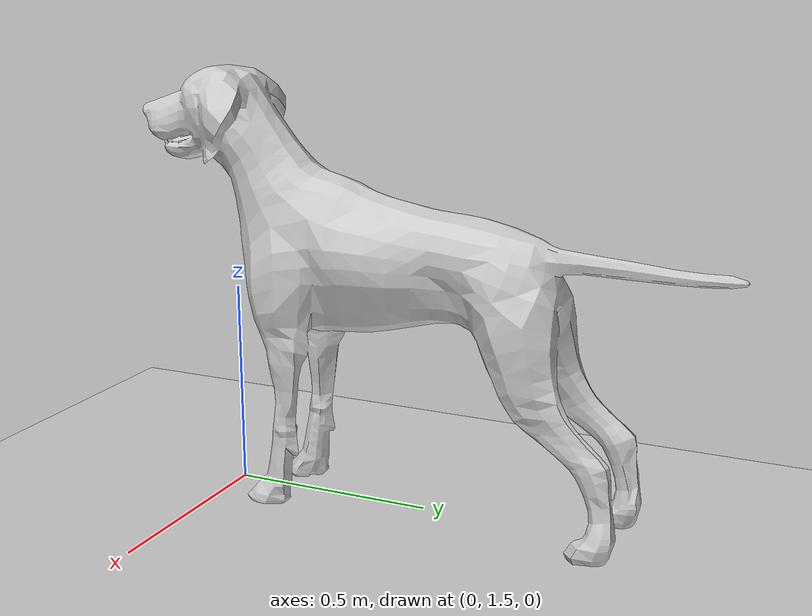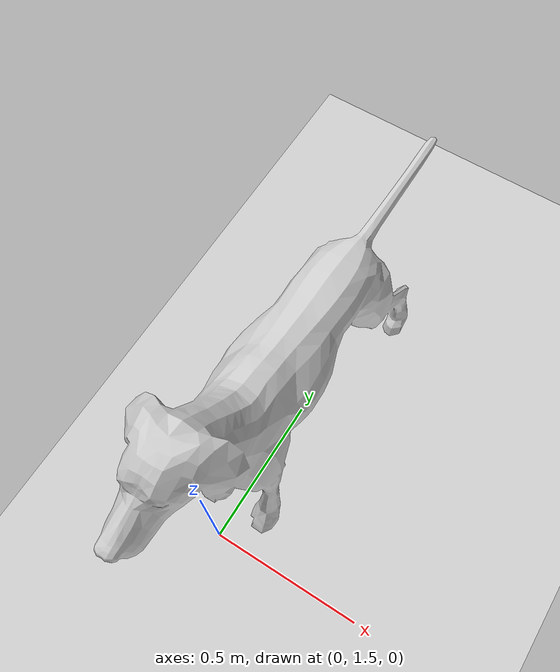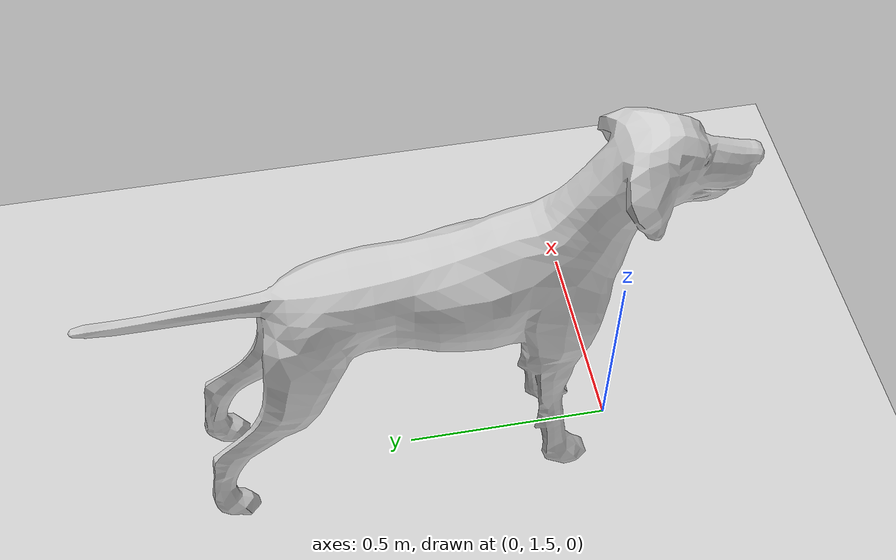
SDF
<?xml version="1.0"?>

<sdf version="1.4">
  <world name="default">

    <!-- Ground Plane -->
    <include>
      <uri>model://ground_plane</uri>
    </include>

    <!-- Source of Light -->
    <include>
      <uri>model://sun</uri>
    </include>

    <!-- Custom dog model -->
    <include>
      <uri>model://dog</uri>
      <pose>0 2 0 0 0 0 </pose>
    </include>

  </world>
</sdf>

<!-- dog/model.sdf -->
<sdf version="1.5">
  <model name="Dog">
    <static>true</static>
    <link name="link">
      <collision name="collision">
        <geometry>
          <mesh>
            <uri>model://dog/meshes/dog.dae</uri>
          </mesh>
        </geometry>
      </collision>
      <visual name="visual">
        <geometry>
          <mesh>
            <uri>model://dog/meshes/dog.dae</uri>
          </mesh>
        </geometry>
      </visual>
    </link>
  </model>
</sdf>
